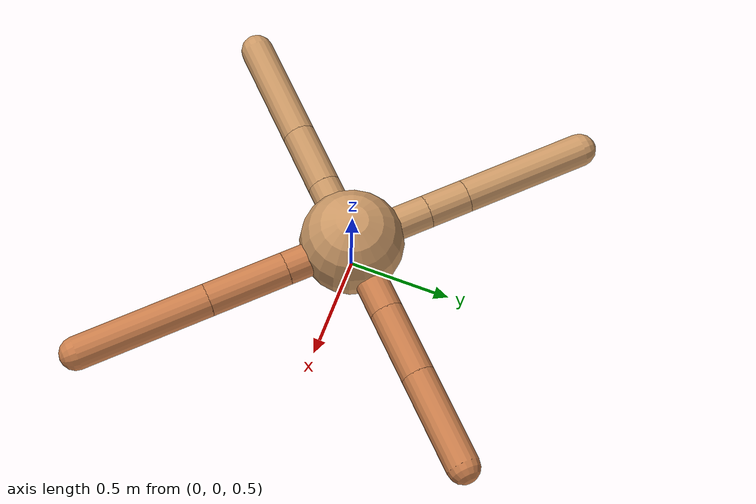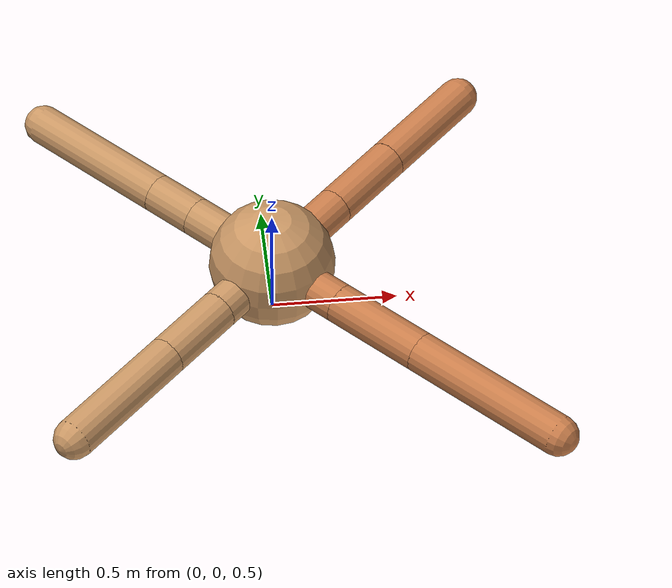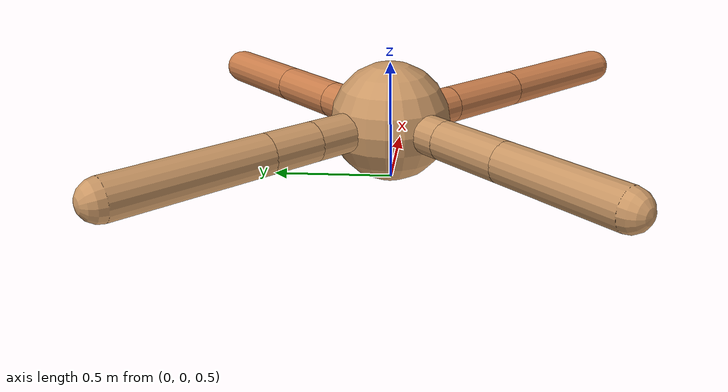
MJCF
<mujoco model="ant">
  <compiler angle="degree" coordinate="local" inertiafromgeom="true" />
  <option integrator="RK4" timestep="0.01" />
  <custom>
    <numeric data="0.0 0.0 0.55 1.0 0.0 0.0 0.0 0.0 1.0 0.0 -1.0 0.0 -1.0 0.0 1.0" name="init_qpos" />
  </custom>
  <default>
    <joint armature="1" damping="1" limited="true" />
    <geom conaffinity="0" condim="3" density="5.0" friction="1.5 0.1 0.1" margin="0.01" rgba="0.8 0.6 0.4 1" />
  </default>
  <worldbody>
    <body name="torso" pos="0 0 0.75">
      <geom name="torso_geom" pos="0 0 0" size="0.25" type="sphere" />

      <body name="front_left_leg" pos="0 0 0">
        <geom fromto="0.0 0.0 0.0 0.2769361535603801 0.2769361535603801 0.0" name="aux_1_geom" size="0.08" type="capsule" rgba=".8 .5 .3 1" />
        <body name="aux_1" pos="0.2769361535603801 0.2769361535603801 0.0">
          <joint axis="0 0 1" name="hip_1" pos="0.0 0.0 0.0" range="-40 40" type="hinge" />
          <geom fromto="0.0 0.0 0.0 0.24232786356784708 0.24232786356784708 0.0" name="left_leg_geom" size="0.08" type="capsule" rgba=".8 .5 .3 1" />
          <body pos="0.24232786356784708 0.24232786356784708 0.0" name="front_left_foot">
            <joint axis="-1 1 0" name="ankle_1" pos="0.0 0.0 0.0" range="30 100" type="hinge" />
            <geom fromto="0.0 0.0 0.0 0.33281531513871077 0.33281531513871077 0.0" name="left_ankle_geom" size="0.08" type="capsule" rgba=".8 .5 .3 1" />
          </body>
        </body>
      </body>
      <body name="front_right_leg" pos="0 0 0">
        <geom fromto="0.0 0.0 0.0 -0.27565881799797276 0.27565881799797276 0.0" name="aux_2_geom" size="0.08" type="capsule" />
        <body name="aux_2" pos="-0.27565881799797276 0.27565881799797276 0.0">
          <joint axis="0 0 1" name="hip_2" pos="0.0 0.0 0.0" range="-40 40" type="hinge" />
          <geom fromto="0.0 0.0 0.0 -0.145060990645533 0.145060990645533 0.0" name="right_leg_geom" size="0.08" type="capsule" />
          <body pos="-0.145060990645533 0.145060990645533 0.0" name="front_right_foot">
            <joint axis="1 1 0" name="ankle_2" pos="0.0 0.0 0.0" range="-100 -30" type="hinge" />
            <geom fromto="0.0 0.0 0.0 -0.43755444094392826 0.43755444094392826 0.0" name="right_ankle_geom" size="0.08" type="capsule" />
          </body>
        </body>
      </body>
      <body name="left_back_leg" pos="0 0 0">
        <geom fromto="0.0 0.0 0.0 -0.23007776179854728 -0.23007776179854728 0.0" name="aux_3_geom" size="0.08" type="capsule" />
        <body name="aux_3" pos="-0.23007776179854728 -0.23007776179854728 0.0">
          <joint axis="0 0 1" name="hip_3" pos="0.0 0.0 0.0" range="-40 40" type="hinge" />
          <geom fromto="0.0 0.0 0.0 -0.21483129326876763 -0.21483129326876763 0.0" name="back_leg_geom" size="0.08" type="capsule" />
          <body pos="-0.21483129326876763 -0.21483129326876763 0.0" name="left_back_foot">
            <joint axis="-1 1 0" name="ankle_3" pos="0.0 0.0 0.0" range="-100 -30" type="hinge" />
            <geom fromto="0.0 0.0 0.0 -0.3739430572108314 -0.3739430572108314 0.0" name="third_ankle_geom" size="0.08" type="capsule" />
          </body>
        </body>
      </body>
      <body name="right_back_leg" pos="0 0 0">
        <geom fromto="0.0 0.0 0.0 0.24156610121827687 -0.24156610121827687 0.0" name="aux_4_geom" size="0.08" type="capsule" rgba=".8 .5 .3 1" />
        <body name="aux_4" pos="0.24156610121827687 -0.24156610121827687 0.0">
          <joint axis="0 0 1" name="hip_4" pos="0.0 0.0 0.0" range="-40 40" type="hinge" />
          <geom fromto="0.0 0.0 0.0 0.27796114851887505 -0.27796114851887505 0.0" name="rightback_leg_geom" size="0.08" type="capsule" rgba=".8 .5 .3 1" />
          <body pos="0.27796114851887505 -0.27796114851887505 0.0" name="right_back_foot">
            <joint axis="1 1 0" name="ankle_4" pos="0.0 0.0 0.0" range="30 100" type="hinge" />
            <geom fromto="0.0 0.0 0.0 0.4605598833109493 -0.4605598833109493 0.0" name="fourth_ankle_geom" size="0.08" type="capsule" rgba=".8 .5 .3 1" />
          </body>
        </body>
      </body>
    </body>
  </worldbody>
  <actuator>
    <motor ctrllimited="true" ctrlrange="-1.0 1.0" joint="hip_4" gear="150" />
    <motor ctrllimited="true" ctrlrange="-1.0 1.0" joint="ankle_4" gear="150" />
    <motor ctrllimited="true" ctrlrange="-1.0 1.0" joint="hip_1" gear="150" />
    <motor ctrllimited="true" ctrlrange="-1.0 1.0" joint="ankle_1" gear="150" />
    <motor ctrllimited="true" ctrlrange="-1.0 1.0" joint="hip_2" gear="150" />
    <motor ctrllimited="true" ctrlrange="-1.0 1.0" joint="ankle_2" gear="150" />
    <motor ctrllimited="true" ctrlrange="-1.0 1.0" joint="hip_3" gear="150" />
    <motor ctrllimited="true" ctrlrange="-1.0 1.0" joint="ankle_3" gear="150" />
  </actuator>
</mujoco>
